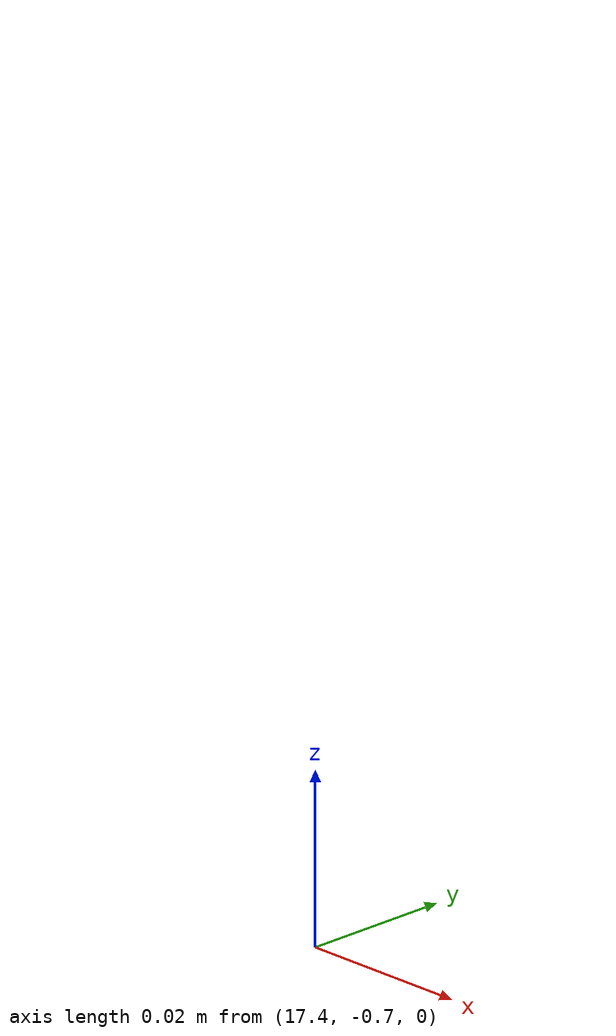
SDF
<?xml version='1.0'?>
<sdf version='1.6'>
  <model name='empty_floor'>
    <pose frame=''>17.6432 -0.709702 0 0 -0 0</pose>
    <link name='Floor'>
      <collision name='Floor'>
        <geometry>
          <box>
            <size>1524.25 1169.5 0.1</size>
          </box>
        </geometry>
        <surface>
        <friction>
          <ode>
            <mu>100</mu>
            <mu2>50</mu2>
          </ode>
        </friction>
        </surface>
        <pose frame=''>0 0 0.05 0 -0 0</pose>
      </collision>
      <visual name='Floor'>
        <pose frame=''>0 0 0.05 0 -0 0</pose>
        <geometry>
          <box>
            <size>0 0 0.1</size>
          </box>
        </geometry>
        <material>
          <script>
            <uri>file://media/materials/scripts/gazebo.material</uri>
            <name>Gazebo/WhiteTransparent</name>
          </script>
          <ambient>0 0 0 0</ambient>
        </material>
        <meta>
          <layer>1</layer>
        </meta>
      </visual>
      <pose frame=''>-0.250009 -2e-06 0 0 -0 0</pose>
    </link>
    <link name='Wall_0'>
      <collision name='Wall_0_Collision'>
        <geometry>
          <box>
            <size>140.25 0.15 2.5</size>
          </box>
        </geometry>
        <pose frame=''>0 0 1.25 0 -0 0</pose>
      </collision>
      <pose frame=''>-211.8 3.375 0 0 -0 1.5708</pose>
    </link>
    <link name='Wall_1'>
      <collision name='Wall_1_Collision'>
        <geometry>
          <box>
            <size>424 0.15 2.5</size>
          </box>
        </geometry>
        <pose frame=''>0 0 1.25 0 -0 0</pose>
      </collision>
      <pose frame=''>0.124994 73.425 0 0 -0 0</pose>
    </link>
    <link name='Wall_2'>
      <collision name='Wall_2_Collision'>
        <geometry>
          <box>
            <size>147 0.15 2.5</size>
          </box>
        </geometry>
        <pose frame=''>0 0 1.25 0 -0 0</pose>
      </collision>
      <pose frame=''>212.05 -2e-06 0 0 -0 -1.5708</pose>
    </link>
    <link name='Wall_3'>
      <collision name='Wall_3_Collision'>
        <geometry>
          <box>
            <size>424.25 0.15 2.5</size>
          </box>
        </geometry>
        <pose frame=''>0 0 1.25 0 -0 0</pose>
      </collision>
      <pose frame=''>-6e-06 -73.425 0 0 -0 3.14159</pose>
    </link>
    <link name='Wall_4'>
      <collision name='Wall_4_Collision'>
        <geometry>
          <box>
            <size>9 0.15 2.5</size>
          </box>
        </geometry>
        <pose frame=''>0 0 1.25 0 -0 0</pose>
      </collision>
      <pose frame=''>-212.05 -69 0 0 -0 1.5708</pose>
    </link>
    <static>1</static>
  </model>
</sdf>
